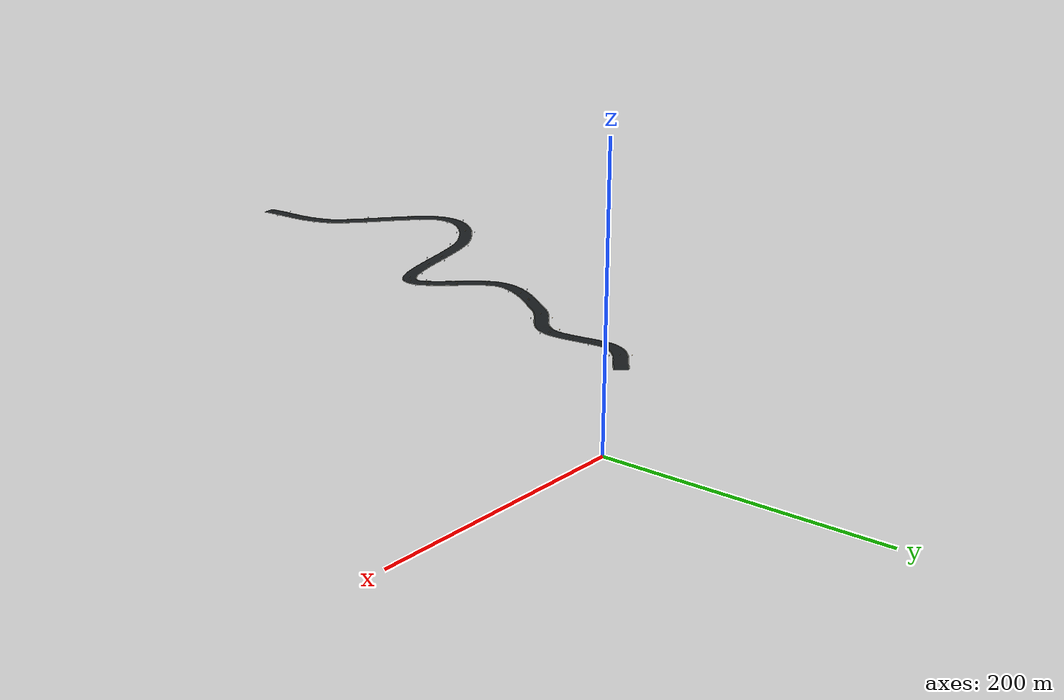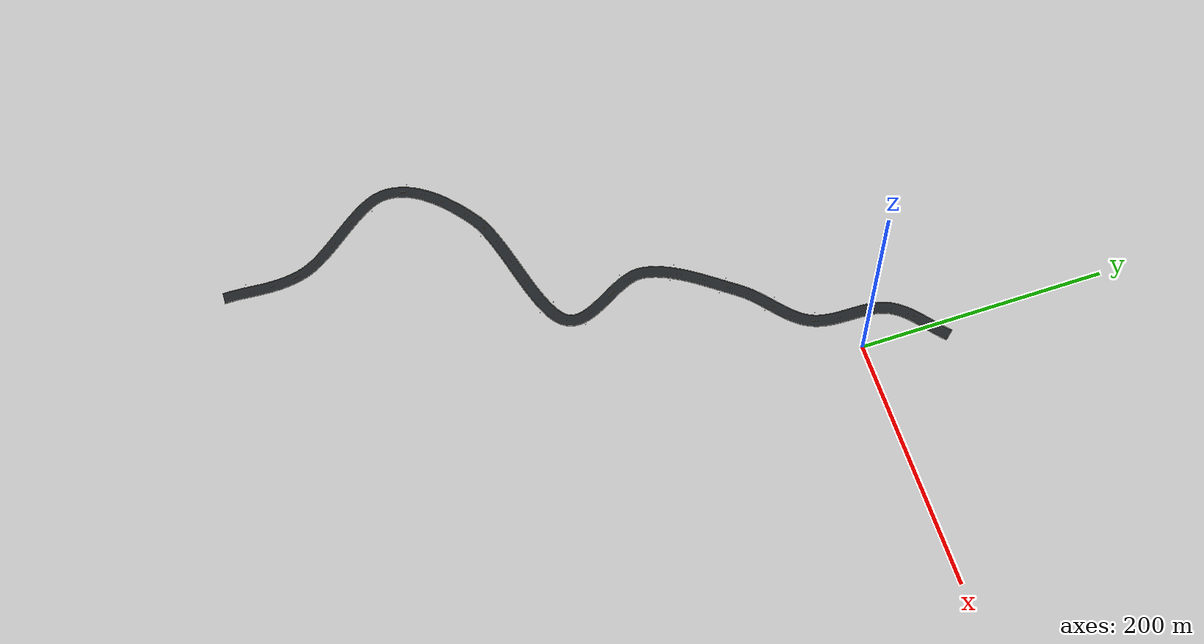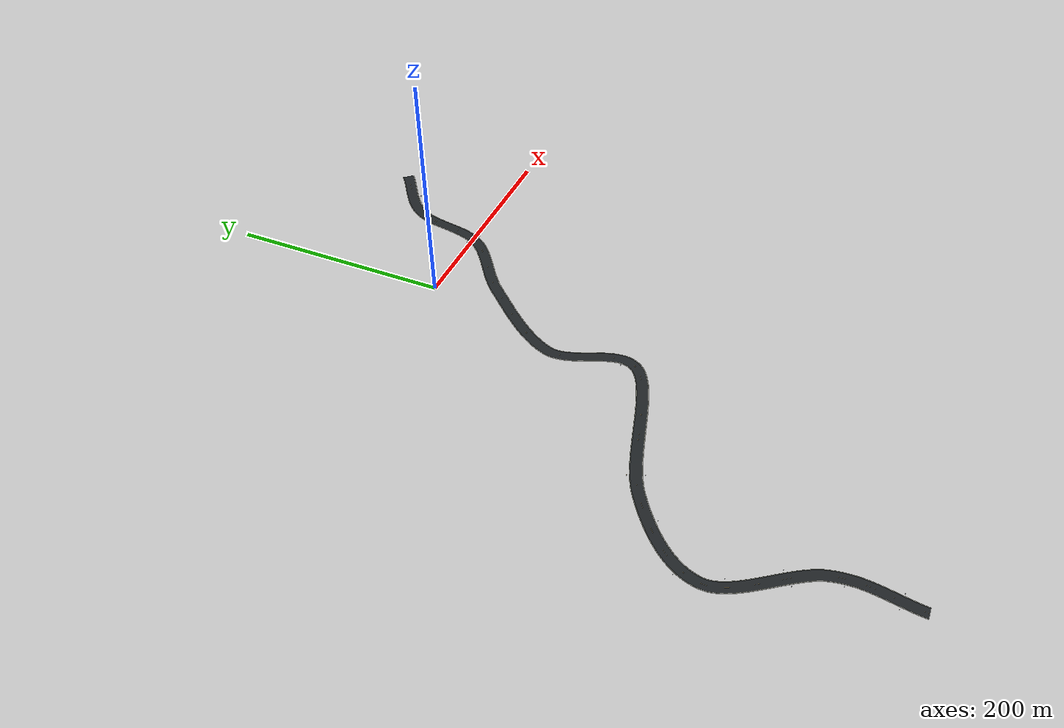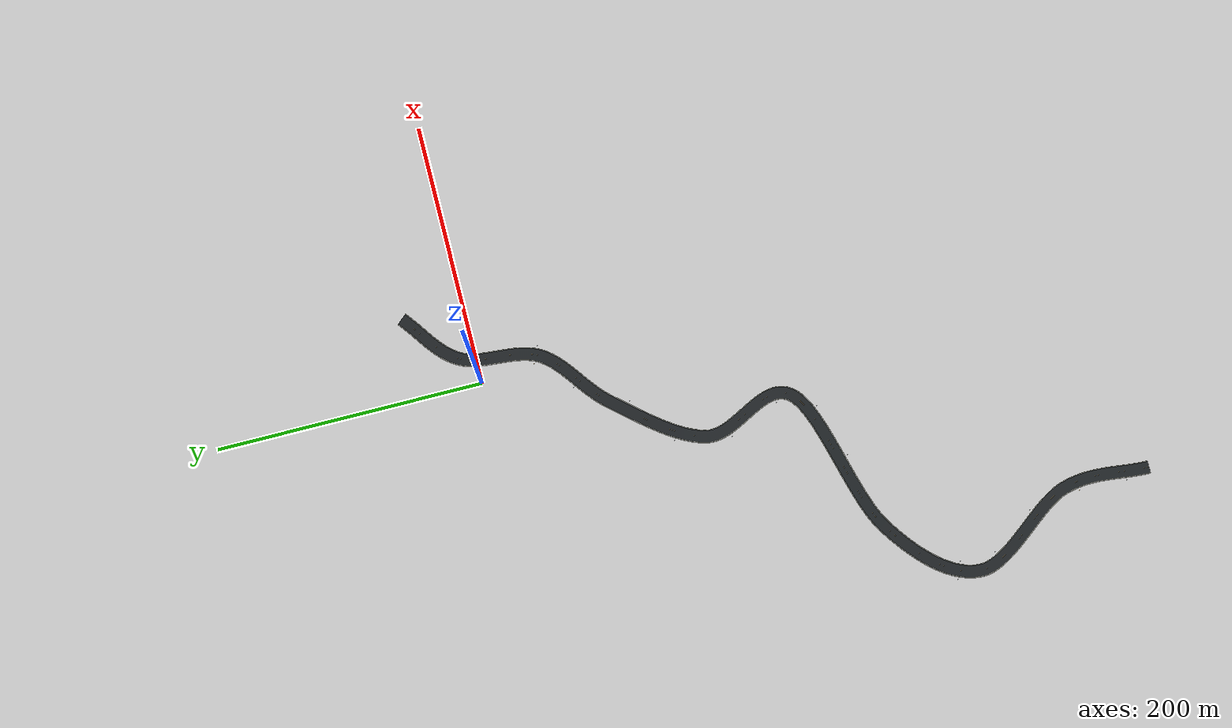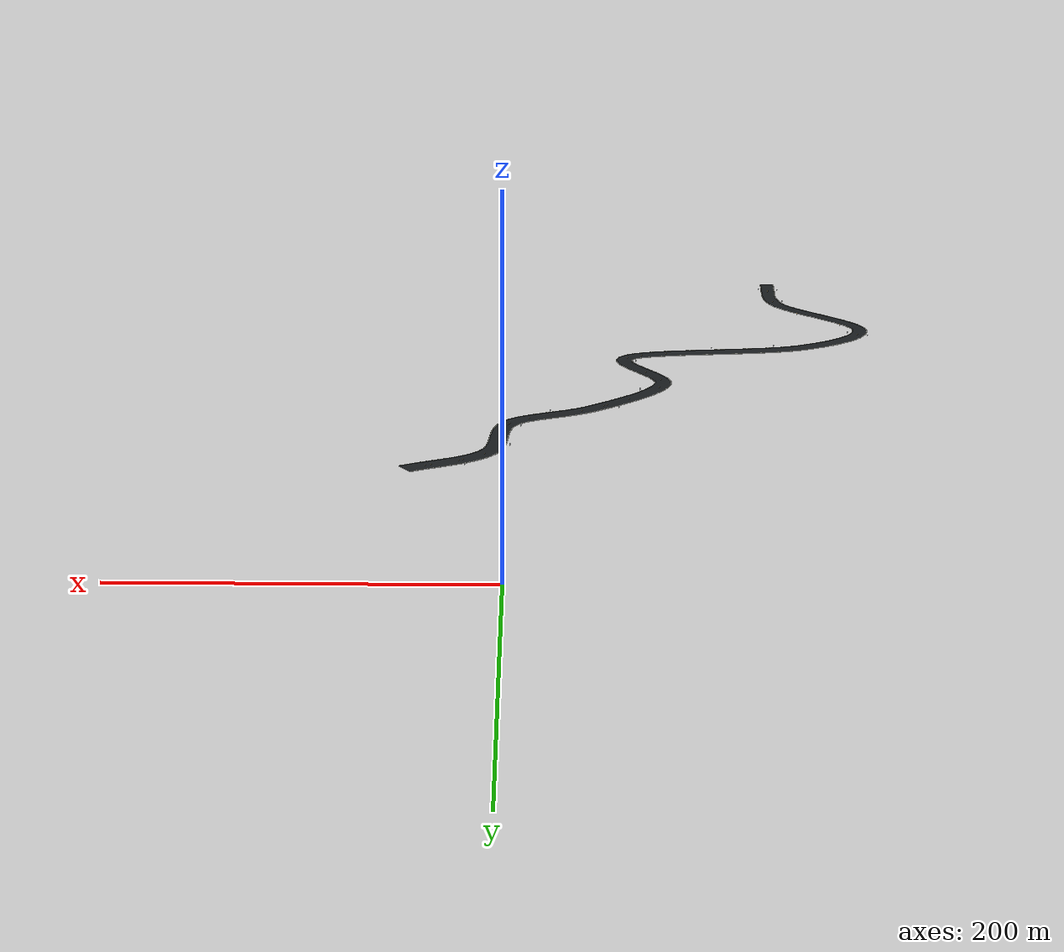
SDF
<?xml version='1.0' encoding='utf-8'?>
<sdf version="1.9">
  <model name="summit_road">
    <static>true</static>
    <link name="structure">
      <visual name="visual_asphalt">
        <geometry>
          <mesh>
            <uri>model://summit_road/meshes/visual/asphalt.dae</uri>
          </mesh>
        </geometry>
        <material>
          <ambient>0.12 0.135 0.145 1</ambient>
          <diffuse>0.12 0.135 0.145 1</diffuse>
          <specular>0.15 0.15 0.15 1</specular>
          <pbr>
            <metal>
              <roughness>0.8</roughness>
              <metalness>0.0</metalness>
            </metal>
          </pbr>
        </material>
      </visual>
      <visual name="visual_stone">
        <geometry>
          <mesh>
            <uri>model://summit_road/meshes/visual/stone.dae</uri>
          </mesh>
        </geometry>
        <material>
          <ambient>0.42 0.43 0.39 1</ambient>
          <diffuse>0.42 0.43 0.39 1</diffuse>
          <specular>0.15 0.15 0.15 1</specular>
          <pbr>
            <metal>
              <roughness>0.8</roughness>
              <metalness>0.0</metalness>
            </metal>
          </pbr>
        </material>
      </visual>
      <visual name="visual_white">
        <geometry>
          <mesh>
            <uri>model://summit_road/meshes/visual/white.dae</uri>
          </mesh>
        </geometry>
        <material>
          <ambient>0.93 0.93 0.89 1</ambient>
          <diffuse>0.93 0.93 0.89 1</diffuse>
          <specular>0.15 0.15 0.15 1</specular>
          <pbr>
            <metal>
              <roughness>0.8</roughness>
              <metalness>0.0</metalness>
            </metal>
          </pbr>
        </material>
      </visual>
      <visual name="visual_sand">
        <geometry>
          <mesh>
            <uri>model://summit_road/meshes/visual/sand.dae</uri>
          </mesh>
        </geometry>
        <material>
          <ambient>0.55 0.48 0.32 1</ambient>
          <diffuse>0.55 0.48 0.32 1</diffuse>
          <specular>0.15 0.15 0.15 1</specular>
          <pbr>
            <metal>
              <roughness>0.8</roughness>
              <metalness>0.0</metalness>
            </metal>
          </pbr>
        </material>
      </visual>
      <visual name="visual_charcoal">
        <geometry>
          <mesh>
            <uri>model://summit_road/meshes/visual/charcoal.dae</uri>
          </mesh>
        </geometry>
        <material>
          <ambient>0.045 0.054 0.06 1</ambient>
          <diffuse>0.045 0.054 0.06 1</diffuse>
          <specular>0.15 0.15 0.15 1</specular>
          <pbr>
            <metal>
              <roughness>0.8</roughness>
              <metalness>0.0</metalness>
            </metal>
          </pbr>
        </material>
      </visual>
      <visual name="visual_emissive">
        <geometry>
          <mesh>
            <uri>model://summit_road/meshes/visual/emissive.dae</uri>
          </mesh>
        </geometry>
        <material>
          <ambient>0.94 0.73 0.36 1</ambient>
          <diffuse>0.94 0.73 0.36 1</diffuse>
          <specular>0.15 0.15 0.15 1</specular>
          <emissive>0.517 0.4015 0.198 1</emissive>
          <pbr>
            <metal>
              <roughness>0.8</roughness>
              <metalness>0.0</metalness>
            </metal>
          </pbr>
        </material>
      </visual>
      <collision name="asphalt_surface">
        <geometry>
          <mesh>
            <uri>model://summit_road/meshes/collision/asphalt_surface.dae</uri>
          </mesh>
        </geometry>
      </collision>
      <collision name="curb_minus4.5">
        <geometry>
          <mesh>
            <uri>model://summit_road/meshes/collision/curb_minus4.5.dae</uri>
          </mesh>
        </geometry>
      </collision>
      <collision name="curb_4.5">
        <geometry>
          <mesh>
            <uri>model://summit_road/meshes/collision/curb_4.5.dae</uri>
          </mesh>
        </geometry>
      </collision>
      <collision name="bollard_12_-1">
        <geometry>
          <box>
            <size>0.22 0.22 1</size>
          </box>
        </geometry>
        <pose>-177.232 -437.862 23.7285 0 0 0</pose>
      </collision>
      <collision name="bollard_12_1">
        <geometry>
          <box>
            <size>0.22 0.22 1</size>
          </box>
        </geometry>
        <pose>-190.353 -436.42 23.7279 0 0 0</pose>
      </collision>
      <collision name="bollard_37_-1">
        <geometry>
          <box>
            <size>0.22 0.22 1</size>
          </box>
        </geometry>
        <pose>-176.261 -398.547 26.286 0 0 0</pose>
      </collision>
      <collision name="bollard_37_1">
        <geometry>
          <box>
            <size>0.22 0.22 1</size>
          </box>
        </geometry>
        <pose>-189.296 -400.626 26.2813 0 0 0</pose>
      </collision>
      <collision name="bollard_62_-1">
        <geometry>
          <box>
            <size>0.22 0.22 1</size>
          </box>
        </geometry>
        <pose>-194.239 -361.224 29.1 0 0 0</pose>
      </collision>
      <collision name="bollard_62_1">
        <geometry>
          <box>
            <size>0.22 0.22 1</size>
          </box>
        </geometry>
        <pose>-204.798 -369.146 29.0988 0 0 0</pose>
      </collision>
      <collision name="bollard_87_-1">
        <geometry>
          <box>
            <size>0.22 0.22 1</size>
          </box>
        </geometry>
        <pose>-217.642 -328.272 32.0007 0 0 0</pose>
      </collision>
      <collision name="bollard_87_1">
        <geometry>
          <box>
            <size>0.22 0.22 1</size>
          </box>
        </geometry>
        <pose>-229.384 -334.301 31.9947 0 0 0</pose>
      </collision>
      <collision name="bollard_112_-1">
        <geometry>
          <box>
            <size>0.22 0.22 1</size>
          </box>
        </geometry>
        <pose>-218.184 -302.108 35.1382 0 0 0</pose>
      </collision>
      <collision name="bollard_112_1">
        <geometry>
          <box>
            <size>0.22 0.22 1</size>
          </box>
        </geometry>
        <pose>-230.246 -296.746 35.1471 0 0 0</pose>
      </collision>
      <collision name="bollard_137_-1">
        <geometry>
          <box>
            <size>0.22 0.22 1</size>
          </box>
        </geometry>
        <pose>-195.661 -274.652 38.5754 0 0 0</pose>
      </collision>
      <collision name="bollard_137_1">
        <geometry>
          <box>
            <size>0.22 0.22 1</size>
          </box>
        </geometry>
        <pose>-204.192 -264.58 38.5784 0 0 0</pose>
      </collision>
      <collision name="bollard_162_-1">
        <geometry>
          <box>
            <size>0.22 0.22 1</size>
          </box>
        </geometry>
        <pose>-164.134 -254.538 41.5107 0 0 0</pose>
      </collision>
      <collision name="bollard_162_1">
        <geometry>
          <box>
            <size>0.22 0.22 1</size>
          </box>
        </geometry>
        <pose>-168.953 -242.249 41.5132 0 0 0</pose>
      </collision>
      <collision name="bollard_187_-1">
        <geometry>
          <box>
            <size>0.22 0.22 1</size>
          </box>
        </geometry>
        <pose>-124.312 -242.72 43.8158 0 0 0</pose>
      </collision>
      <collision name="bollard_187_1">
        <geometry>
          <box>
            <size>0.22 0.22 1</size>
          </box>
        </geometry>
        <pose>-127.654 -229.95 43.8159 0 0 0</pose>
      </collision>
      <collision name="bollard_212_-1">
        <geometry>
          <box>
            <size>0.22 0.22 1</size>
          </box>
        </geometry>
        <pose>-84.6398 -230.345 46.1184 0 0 0</pose>
      </collision>
      <collision name="bollard_212_1">
        <geometry>
          <box>
            <size>0.22 0.22 1</size>
          </box>
        </geometry>
        <pose>-89.9296 -218.252 46.1219 0 0 0</pose>
      </collision>
      <collision name="bollard_237_-1">
        <geometry>
          <box>
            <size>0.22 0.22 1</size>
          </box>
        </geometry>
        <pose>-62.6312 -201.068 49.0556 0 0 0</pose>
      </collision>
      <collision name="bollard_237_1">
        <geometry>
          <box>
            <size>0.22 0.22 1</size>
          </box>
        </geometry>
        <pose>-75.7474 -202.553 49.0337 0 0 0</pose>
      </collision>
      <collision name="bollard_262_-1">
        <geometry>
          <box>
            <size>0.22 0.22 1</size>
          </box>
        </geometry>
        <pose>-79.8284 -160.72 52.9539 0 0 0</pose>
      </collision>
      <collision name="bollard_262_1">
        <geometry>
          <box>
            <size>0.22 0.22 1</size>
          </box>
        </geometry>
        <pose>-92.2127 -165.288 52.9444 0 0 0</pose>
      </collision>
      <collision name="bollard_287_-1">
        <geometry>
          <box>
            <size>0.22 0.22 1</size>
          </box>
        </geometry>
        <pose>-74.0164 -131.185 56.9948 0 0 0</pose>
      </collision>
      <collision name="bollard_287_1">
        <geometry>
          <box>
            <size>0.22 0.22 1</size>
          </box>
        </geometry>
        <pose>-85.3759 -124.461 57 0 0 0</pose>
      </collision>
      <collision name="bollard_312_-1">
        <geometry>
          <box>
            <size>0.22 0.22 1</size>
          </box>
        </geometry>
        <pose>-50.5072 -100.216 61.1668 0 0 0</pose>
      </collision>
      <collision name="bollard_312_1">
        <geometry>
          <box>
            <size>0.22 0.22 1</size>
          </box>
        </geometry>
        <pose>-60.5622 -91.6638 61.1667 0 0 0</pose>
      </collision>
      <collision name="bollard_337_-1">
        <geometry>
          <box>
            <size>0.22 0.22 1</size>
          </box>
        </geometry>
        <pose>-23.9021 -74.2248 65.4757 0 0 0</pose>
      </collision>
      <collision name="bollard_337_1">
        <geometry>
          <box>
            <size>0.22 0.22 1</size>
          </box>
        </geometry>
        <pose>-31.8326 -63.6727 65.475 0 0 0</pose>
      </collision>
      <collision name="bollard_362_-1">
        <geometry>
          <box>
            <size>0.22 0.22 1</size>
          </box>
        </geometry>
        <pose>3.34644 -46.0773 69.8158 0 0 0</pose>
      </collision>
      <collision name="bollard_362_1">
        <geometry>
          <box>
            <size>0.22 0.22 1</size>
          </box>
        </geometry>
        <pose>-8.69795 -40.6761 69.8 0 0 0</pose>
      </collision>
      <collision name="bollard_387_-1">
        <geometry>
          <box>
            <size>0.22 0.22 1</size>
          </box>
        </geometry>
        <pose>9.45206 -5.75682 73.769 0 0 0</pose>
      </collision>
      <collision name="bollard_387_1">
        <geometry>
          <box>
            <size>0.22 0.22 1</size>
          </box>
        </geometry>
        <pose>-3.65535 -4.19609 73.7632 0 0 0</pose>
      </collision>
      <collision name="bollard_412_-1">
        <geometry>
          <box>
            <size>0.22 0.22 1</size>
          </box>
        </geometry>
        <pose>24.9902 20.4624 77.6162 0 0 0</pose>
      </collision>
      <collision name="bollard_412_1">
        <geometry>
          <box>
            <size>0.22 0.22 1</size>
          </box>
        </geometry>
        <pose>16.7472 30.7722 77.6212 0 0 0</pose>
      </collision>
    </link>
  </model>
</sdf>
